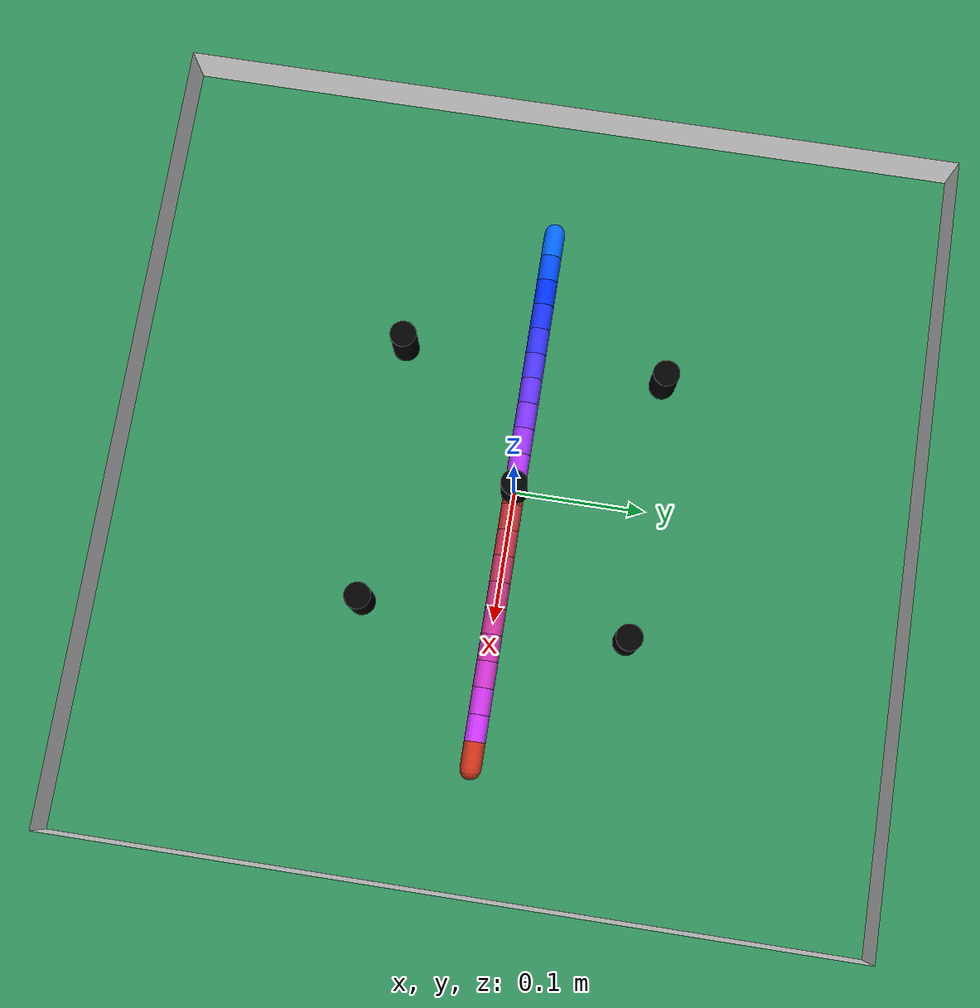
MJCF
<mujoco>
​
  <include file="./common/visual.xml"/>
  <include file="./common/skybox.xml"/>
  <include file="./common/materials.xml"/>
    <asset>
         <texture type="skybox" builtin="gradient" rgb1="0.3 0.5 0.7" rgb2="0 0 0" width="512" height="512"/>
        <texture name="texplane" type="2d" builtin="checker" rgb1=".2 .3 .4" rgb2=".1 0.15 0.2"
            width="512" height="512" mark="cross" markrgb=".8 .8 .8"/>
         <texture name="background" builtin="flat" type="2d" mark="random" markrgb="1 1 1" width="800" height="800" rgb1=".2 .3 .4"/>
        <material name="background" texture="background" texrepeat="1 1" texuniform="true"/>
    </asset>
    <default>
           <geom rgba="255 255 255 1"/>
        <default class="sub">
            <geom rgba="0 1 0 1"/>
        </default>
    </default>
  <worldbody>
       <camera name="fixed" pos="0 0 .73" quat="1 0 0 0"/>
      <light name="light" directional="true" diffuse="0 .0 .0" pos="0 0 .5" specular="0 .0 .0"/>
    <geom name="ground" type="plane" pos="0 0 0" size=".6 .6 .1" rgba="0.18 0.545 0.341 1"/>
      <geom name="wall_x" type="plane" pos="-.3 0 .02" zaxis="1 0 0"  size=".02 .3 .02" rgba="1 1 1 1"/>
      <geom name="wall_y" type="plane" pos="0 -.3 .02" zaxis="0 1 0"  size=".3 .02 .02" rgba="1 1 1 1"/>
      <geom name="wall_neg_x" type="plane" pos=".3 0 .02" zaxis="-1 0 0"  size=".02 .3 .02" rgba="1 1 1 1"/>
      <geom name="wall_neg_y" type="plane" pos="0 .3 .02" zaxis="0 -1 0"  size=".3 .02 .02" rgba="1 1 1 1"/>
      <geom name="block_0" type="cylinder" pos="0.1 0.1 .02" size="0.01 0.02" rgba="0 0 0 1" friction="0 0 0 "/>
      <geom name="block_1" type="cylinder" pos="-0.1 0.1 .02" size="0.01 0.02" rgba="0 0 0 1" friction="0 0 0"/>
      <geom name="block_2" type="cylinder" pos="0.1 -0.1 .02" size="0.01 0.02" rgba="0 0 0 1" friction="0 0 0"/>
      <geom name="block_3" type="cylinder" pos="0 0 .02" size="0.01 0.02" rgba="0 0 0 1" friction="0 0 0"/>
      <geom name="block_4" type="cylinder" pos="-0.1 -0.1 .02" size="0.01 0.02" rgba="0 0 0 1" friction="0 0 0"/>

      <body name="B10" pos="0 0 0">
          <inertial pos="0 0 0" quat="0.707107 0 0.707107 0" mass="0.0125664" diaginertia="1.98968e-06 1.98968e-06 6.28319e-07" />
          <camera name="track" mode="trackcom" pos="0 -1 1" xyaxes="1 0 0 0 1 1" />
          <freejoint name="r1" />
          <geom name="G10" size="0.008 0.01" quat="0.707107 0 0.707107 0" type="capsule" rgba="0.8 0.2 0.1 1" />
          <body name="B11" pos="0.02 0 0">
              <inertial pos="0 0 0" quat="0.707107 0 0.707107 0" mass="0.0125664" diaginertia="1.98968e-06 1.98968e-06 6.28319e-07" />
              <joint name="J0_11" pos="-0.02 0 0" axis="0 1 0" group="3" damping="0.005" />
              <joint name="J1_11" pos="-0.02 0 0" axis="0 0 1" group="3" damping="0.005" />
              <geom name="G11" size="0.008 0.01" quat="0.707107 0 0.707107 0" type="capsule" rgba="0.8 0.2 0.2 1" />
              <body name="B12" pos="0.02 0 0">
                  <inertial pos="0 0 0" quat="0.707107 0 0.707107 0" mass="0.0125664" diaginertia="1.98968e-06 1.98968e-06 6.28319e-07" />
                  <joint name="J0_12" pos="-0.02 0 0" axis="0 1 0" group="3" damping="0.005" />
                  <joint name="J1_12" pos="-0.02 0 0" axis="0 0 1" group="3" damping="0.005" />
                  <geom name="G12" size="0.008 0.01" quat="0.707107 0 0.707107 0" type="capsule" rgba="0.8 0.2 0.3 1" />
                  <body name="B13" pos="0.02 0 0">
                      <inertial pos="0 0 0" quat="0.707107 0 0.707107 0" mass="0.0125664" diaginertia="1.98968e-06 1.98968e-06 6.28319e-07" />
                      <joint name="J0_13" pos="-0.02 0 0" axis="0 1 0" group="3" damping="0.005" />
                      <joint name="J1_13" pos="-0.02 0 0" axis="0 0 1" group="3" damping="0.005" />
                      <geom name="G13" size="0.008 0.01" quat="0.707107 0 0.707107 0" type="capsule" rgba="0.8 0.2 0.4 1" />
                      <body name="B14" pos="0.02 0 0">
                          <inertial pos="0 0 0" quat="0.707107 0 0.707107 0" mass="0.0125664" diaginertia="1.98968e-06 1.98968e-06 6.28319e-07" />
                          <joint name="J0_14" pos="-0.02 0 0" axis="0 1 0" group="3" damping="0.005" />
                          <joint name="J1_14" pos="-0.02 0 0" axis="0 0 1" group="3" damping="0.005" />
                          <geom name="G14" size="0.008 0.01" quat="0.707107 0 0.707107 0" type="capsule" rgba="0.8 0.2 0.5 1" />
                          <body name="B15" pos="0.02 0 0">
                              <inertial pos="0 0 0" quat="0.707107 0 0.707107 0" mass="0.0125664" diaginertia="1.98968e-06 1.98968e-06 6.28319e-07" />
                              <joint name="J0_15" pos="-0.02 0 0" axis="0 1 0" group="3" damping="0.005" />
                              <joint name="J1_15" pos="-0.02 0 0" axis="0 0 1" group="3" damping="0.005" />
                              <geom name="G15" size="0.008 0.01" quat="0.707107 0 0.707107 0" type="capsule" rgba="0.8 0.2 0.6 1" />
                              <body name="B16" pos="0.02 0 0">
                                  <inertial pos="0 0 0" quat="0.707107 0 0.707107 0" mass="0.0125664" diaginertia="1.98968e-06 1.98968e-06 6.28319e-07" />
                                  <joint name="J0_16" pos="-0.02 0 0" axis="0 1 0" group="3" damping="0.005" />
                                  <joint name="J1_16" pos="-0.02 0 0" axis="0 0 1" group="3" damping="0.005" />
                                  <geom name="G16" size="0.008 0.01" quat="0.707107 0 0.707107 0" type="capsule" rgba="0.8 0.2 0.7 1" />
                                  <body name="B17" pos="0.02 0 0">
                                      <inertial pos="0 0 0" quat="0.707107 0 0.707107 0" mass="0.0125664" diaginertia="1.98968e-06 1.98968e-06 6.28319e-07" />
                                      <joint name="J0_17" pos="-0.02 0 0" axis="0 1 0" group="3" damping="0.005" />
                                      <joint name="J1_17" pos="-0.02 0 0" axis="0 0 1" group="3" damping="0.005" />
                                      <geom name="G17" size="0.008 0.01" quat="0.707107 0 0.707107 0" type="capsule" rgba="0.8 0.2 0.8 1" />
                                      <body name="B18" pos="0.02 0 0">
                                          <inertial pos="0 0 0" quat="0.707107 0 0.707107 0" mass="0.0125664" diaginertia="1.98968e-06 1.98968e-06 6.28319e-07" />
                                          <joint name="J0_18" pos="-0.02 0 0" axis="0 1 0" group="3" damping="0.005" />
                                          <joint name="J1_18" pos="-0.02 0 0" axis="0 0 1" group="3" damping="0.005" />
                                          <geom name="G18" size="0.008 0.01" quat="0.707107 0 0.707107 0" type="capsule" rgba="0.8 0.2 0.9 1" />
                                          <body name="B19" pos="0.02 0 0">
                                              <inertial pos="0 0 0" quat="0.707107 0 0.707107 0" mass="0.0125664" diaginertia="1.98968e-06 1.98968e-06 6.28319e-07" />
                                              <joint name="J0_19" pos="-0.02 0 0" axis="0 1 0" group="3" damping="0.005" />
                                              <joint name="J1_19" pos="-0.02 0 0" axis="0 0 1" group="3" damping="0.005" />
                                              <geom name="G19" size="0.008 0.01" quat="0.707107 0 0.707107 0" type="capsule" rgba="0.8 0.2 1.0 1" />
                                              <body name="B20" pos="0.02 0 0">
                                                  <inertial pos="0 0 0" quat="0.707107 0 0.707107 0" mass="0.0125664" diaginertia="1.98968e-06 1.98968e-06 6.28319e-07" />
                                                  <joint name="J0_20" pos="-0.02 0 0" axis="0 1 0" group="3" damping="0.005" />
                                                  <joint name="J1_20" pos="-0.02 0 0" axis="0 0 1" group="3" damping="0.005" />
                                                  <geom name="G20" size="0.008 0.01" quat="0.707107 0 0.707107 0" type="capsule" rgba="0.8 0.2 0.1 1" />
                                              </body>
                                          </body>
                                      </body>
                                  </body>
                              </body>
                          </body>
                      </body>
                  </body>
              </body>
          </body>
          <body name="B9" pos="-0.02 0 0">
              <inertial pos="0 0 0" quat="0.707107 0 0.707107 0" mass="0.0125664" diaginertia="1.98968e-06 1.98968e-06 6.28319e-07" />
              <joint name="J0_9" pos="0.02 0 0" axis="0 1 0" group="3" damping="0.005" />
              <joint name="J1_9" pos="0.02 0 0" axis="0 0 1" group="3" damping="0.005" />
              <geom name="G9" size="0.008 0.01" quat="0.707107 0 0.707107 0" type="capsule" rgba="0.7 0.2 1.0 1" />
              <body name="B8" pos="-0.02 0 0">
                  <inertial pos="0 0 0" quat="0.707107 0 0.707107 0" mass="0.0125664" diaginertia="1.98968e-06 1.98968e-06 6.28319e-07" />
                  <joint name="J0_8" pos="0.02 0 0" axis="0 1 0" group="3" damping="0.005" />
                  <joint name="J1_8" pos="0.02 0 0" axis="0 0 1" group="3" damping="0.005" />
                  <geom name="G8" size="0.008 0.01" quat="0.707107 0 0.707107 0" type="capsule" rgba="0.6 0.2 1.0 1" />
                  <body name="B7" pos="-0.02 0 0">
                      <inertial pos="0 0 0" quat="0.707107 0 0.707107 0" mass="0.0125664" diaginertia="1.98968e-06 1.98968e-06 6.28319e-07" />
                      <joint name="J0_7" pos="0.02 0 0" axis="0 1 0" group="3" damping="0.005" />
                      <joint name="J1_7" pos="0.02 0 0" axis="0 0 1" group="3" damping="0.005" />
                      <geom name="G7" size="0.008 0.01" quat="0.707107 0 0.707107 0" type="capsule" rgba="0.5 0.2 1.0 1" />
                      <body name="B6" pos="-0.02 0 0">
                          <inertial pos="0 0 0" quat="0.707107 0 0.707107 0" mass="0.0125664" diaginertia="1.98968e-06 1.98968e-06 6.28319e-07" />
                          <joint name="J0_6" pos="0.02 0 0" axis="0 1 0" group="3" damping="0.005" />
                          <joint name="J1_6" pos="0.02 0 0" axis="0 0 1" group="3" damping="0.005" />
                          <geom name="G6" size="0.008 0.01" quat="0.707107 0 0.707107 0" type="capsule" rgba="0.4 0.2 1.0 1" />
                          <body name="B5" pos="-0.02 0 0">
                              <inertial pos="0 0 0" quat="0.707107 0 0.707107 0" mass="0.0125664" diaginertia="1.98968e-06 1.98968e-06 6.28319e-07" />
                              <joint name="J0_5" pos="0.02 0 0" axis="0 1 0" group="3" damping="0.005" />
                              <joint name="J1_5" pos="0.02 0 0" axis="0 0 1" group="3" damping="0.005" />
                              <geom name="G5" size="0.008 0.01" quat="0.707107 0 0.707107 0" type="capsule" rgba="0.3 0.2 1.0 1" />
                              <body name="B4" pos="-0.02 0 0">
                                  <inertial pos="0 0 0" quat="0.707107 0 0.707107 0" mass="0.0125664" diaginertia="1.98968e-06 1.98968e-06 6.28319e-07" />
                                  <joint name="J0_4" pos="0.02 0 0" axis="0 1 0" group="3" damping="0.005" />
                                  <joint name="J1_4" pos="0.02 0 0" axis="0 0 1" group="3" damping="0.005" />
                                  <geom name="G4" size="0.008 0.01" quat="0.707107 0 0.707107 0" type="capsule" rgba="0.2 0.2 1.0 1" />
                                  <body name="B3" pos="-0.02 0 0">
                                      <inertial pos="0 0 0" quat="0.707107 0 0.707107 0" mass="0.0125664" diaginertia="1.98968e-06 1.98968e-06 6.28319e-07" />
                                      <joint name="J0_3" pos="0.02 0 0" axis="0 1 0" group="3" damping="0.005" />
                                      <joint name="J1_3" pos="0.02 0 0" axis="0 0 1" group="3" damping="0.005" />
                                      <geom name="G3" size="0.008 0.01" quat="0.707107 0 0.707107 0" type="capsule" rgba="0.1 0.2 1 1" />
                                      <body name="B2" pos="-0.02 0 0">
                                          <inertial pos="0 0 0" quat="0.707107 0 0.707107 0" mass="0.0125664" diaginertia="1.98968e-06 1.98968e-06 6.28319e-07" />
                                          <joint name="J0_2" pos="0.02 0 0" axis="0 1 0" group="3" damping="0.005" />
                                          <joint name="J1_2" pos="0.02 0 0" axis="0 0 1" group="3" damping="0.005" />
                                          <geom name="G2" size="0.008 0.01" quat="0.707107 0 0.707107 0" type="capsule" rgba="0 0.2 1 1" />
                                          <body name="B1" pos="-0.02 0 0">
                                              <inertial pos="0 0 0" quat="0.707107 0 0.707107 0" mass="0.0125664" diaginertia="1.98968e-06 1.98968e-06 6.28319e-07" />
                                              <joint name="J0_1" pos="0.02 0 0" axis="0 1 0" group="3" damping="0.005" />
                                              <joint name="J1_1" pos="0.02 0 0" axis="0 0 1" group="3" damping="0.005" />
                                              <geom name="G1" size="0.008 0.01" quat="0.707107 0 0.707107 0" type="capsule" rgba="0 0.3 1 1" />
                                              <body name="B0" pos="-0.02 0 0">
                                                  <inertial pos="0 0 0" quat="0.707107 0 0.707107 0" mass="0.0125664" diaginertia="1.98968e-06 1.98968e-06 6.28319e-07" />
                                                  <joint name="J0_0" pos="0.02 0 0" axis="0 1 0" group="3" damping="0.005" />
                                                  <joint name="J1_0" pos="0.02 0 0" axis="0 0 1" group="3" damping="0.005" />
                                                  <geom name="G0" size="0.008 0.01" quat="0.707107 0 0.707107 0" type="capsule" rgba="0 0.4 1 1" />
                                              </body>
                                          </body>
                                      </body>
                                  </body>
                              </body>
                          </body>
                      </body>
                  </body>
              </body>
          </body>
      </body>
  </worldbody>
  <sensor>

  </sensor>
  <actuator>
    <motor ctrllimited="true" ctrlrange="-1 1" gear="10.0" joint="r1"/>
  </actuator>
</mujoco>

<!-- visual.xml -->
<mujoco>
    <visual>
        <headlight ambient=".4 .4 .4" diffuse=".8 .8 .8" specular="0.1 0.1 0.1"/>
        <map znear=".01"/>
        <quality shadowsize="2048"/>
    </visual>
</mujoco>

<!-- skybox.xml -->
<mujoco>
    <asset>
        <texture name="skybox" type="skybox" builtin="gradient" rgb1=".4 .6 .8" rgb2="0 0 0"
                 width="800" height="800" mark="random" markrgb="1 1 1"/>
    </asset>
</mujoco>

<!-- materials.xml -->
<!--
Common textures, colors and materials to be used throughout this suite. Some
materials such as xxx_highlight are activated on occurence of certain events,
for example receiving a positive reward.
-->
<mujoco>
    <asset>
        <texture name="grid" type="2d" builtin="checker" rgb1=".1 .2 .3" rgb2=".2 .3 .4" width="300" height="300" mark="edge" markrgb=".2 .3 .4"/>
        <material name="grid" texture="grid" texrepeat="1 1" texuniform="true" reflectance=".2"/>
        <material name="self" rgba=".7 .5 .3 1"/>
        <material name="self_default" rgba=".7 .5 .3 1"/>
        <material name="self_highlight" rgba="0 .5 .3 1"/>
        <material name="effector" rgba=".7 .4 .2 1"/>
        <material name="effector_default" rgba=".7 .4 .2 1"/>
        <material name="effector_highlight" rgba="0 .5 .3 1"/>
        <material name="decoration" rgba=".3 .5 .7 1"/>
        <material name="eye" rgba="0 .2 1 1"/>
        <material name="target" rgba=".6 .3 .3 1"/>
        <material name="target_default" rgba=".6 .3 .3 1"/>
        <material name="target_highlight" rgba=".6 .3 .3 .4"/>
        <material name="site" rgba=".5 .5 .5 .3"/>
    </asset>
</mujoco>
